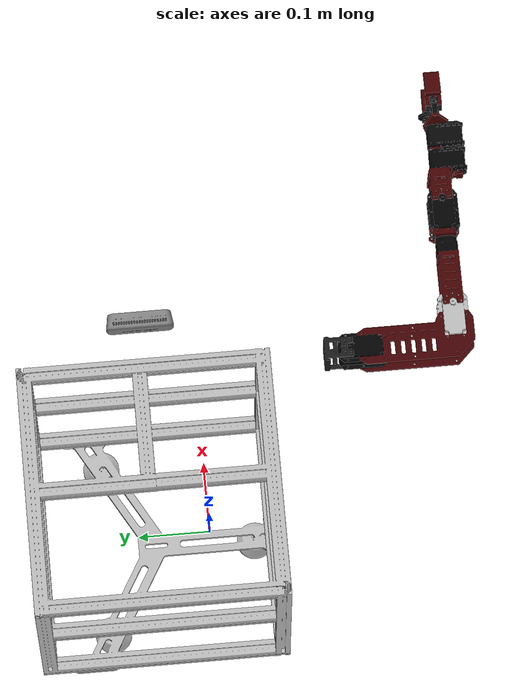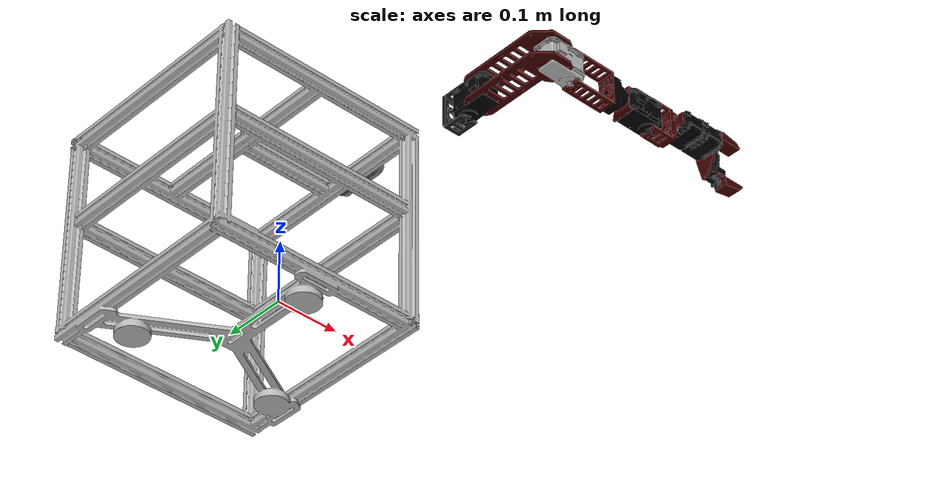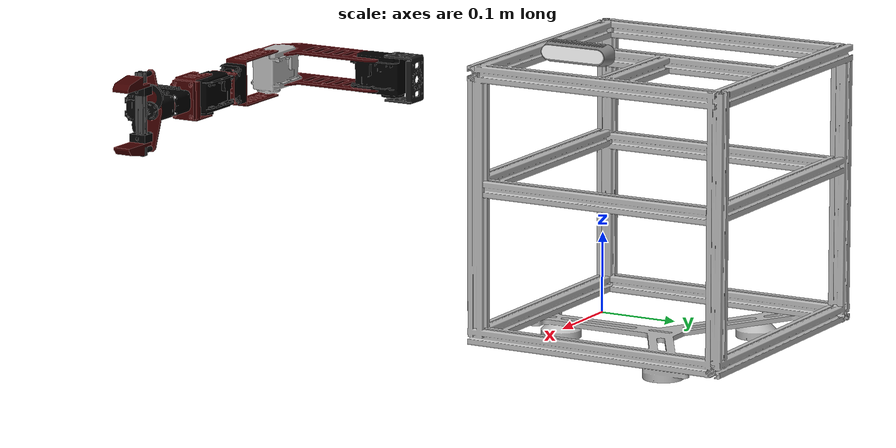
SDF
<?xml version="1.0"?>
<sdf version="1.8">
  <model name="abv">
    <static>false</static>
    <self_collide>true</self_collide>

    <!-- Mobile base -->
    <include>
      <uri>model://abv_chassis</uri>
      <name>base</name>
      <pose>0 0 0.04 0 0 0</pose>
    </include>

    <include>
      <uri>model://realsense_camera</uri>
      <name>camera</name>
      <pose>0.19 0.075 0.265 0 0 0</pose>
    </include>

    <include>
      <uri>model://widow_xl</uri>
      <name>wxr</name>
      <pose>0.155 -0.205 0.3 0 -1.57 1.57</pose>
      <plugin filename="libjoint_position_controller.so" name="JointPositionController">
        <publish>gazebo/joint_positions</publish>
        <command>gazebo/joint_commands</command>
        <initial_position>0 0 0 0</initial_position>
      </plugin>
    </include>

    <joint name="camera_mount" type="fixed">
      <parent>base::vehicle_frame</parent>
      <child>camera::camera_link</child>
    </joint>

    <!-- Fixed joint (weld) between the base link and the arm’s base link -->
    <joint name="weld_arm_to_base" type="fixed">
      <parent>base::vehicle_frame</parent>
      <child>wxr::widow_xl_base</child>
    </joint>

  </model>
</sdf>

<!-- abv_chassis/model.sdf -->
<sdf version="1.8">
  <model name="abv_chassis">

    <!-- Base link with mesh + inertia -->
    <link name="base_link">
      <pose>0 0 0 0 0 0</pose>

      <collision name="collision">
        <geometry>
          <mesh>
            <uri>model://abv_chassis/meshes/abv_v1.stl</uri>
          </mesh>
        </geometry>
        <surface>
          <friction>
            <ode>
              <mu>0</mu>
              <mu2>0</mu2>
            </ode>
          </friction>
        </surface>
      </collision>

      <visual name="visual">
        <geometry>
          <mesh>
            <uri>model://abv_chassis/meshes/abv_v2.dae</uri>
          </mesh>
        </geometry>
      </visual>

      <inertial>
        <mass>12.7</mass>
        <inertia>
          <ixx>0.3</ixx><iyy>0.3</iyy><izz>0.3</izz>
          <ixy>0</ixy><ixz>0</ixz><iyz>0</iyz>
        </inertia>
      </inertial>
    </link>

    <!-- Vehicle frame -->
    <link name="vehicle_frame">
      <pose relative_to="base_link">0.01 0.065 0.2 0 0 0</pose>

      <inertial>
        <mass>0.1</mass>
        <inertia>
          <ixx>0.1</ixx><iyy>0.1</iyy><izz>0.1</izz>
          <ixy>0</ixy><ixz>0</ixz><iyz>0</iyz>
        </inertia>
      </inertial>
    </link>

    <joint name="vehicle_frame_to_base" type="fixed">
      <parent>base_link</parent>
      <child>vehicle_frame</child>
    </joint>

  </model>
</sdf>

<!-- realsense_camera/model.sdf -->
<sdf version="1.7">
  <model name="realsense_camera">
    <pose>0 0 0 0 0 0</pose>

    <link name="camera_link">
      <pose>0 0 0 0 0 0</pose>
      <visual name="camera_visual">
        <pose>0 0 0.1 0 0 1.57</pose>
        <geometry>
          	<mesh>
             <uri>model://realsense_camera/meshes/RealSense_D435.dae</uri>
            </mesh>
          </geometry>
      </visual>

      <collision name="camera_collision">
        <pose>0 0 0 0 0 0</pose>
        <geometry>
            <mesh>
             <uri>model://realsense_camera/meshes/RealSense_D435.dae</uri>
            </mesh>
        </geometry>
      </collision>

      <!-- Left camera sensor -->
      <sensor name="left_camera" type="camera">
        <pose>0 0 0 0 0 0</pose>
        <camera>
          <horizontal_fov>1.3962634</horizontal_fov>
          <image>
            <width>640</width>
            <height>480</height>
            <format>R8G8B8</format>
          </image>
          <clip>
            <near>0.5</near>
            <far>3.5</far>
          </clip>
        </camera>
        <always_on>1</always_on>
        <update_rate>10</update_rate>
        <visualize>true</visualize>
      </sensor>

      <!-- Right camera sensor -->
      <sensor name="right_camera" type="camera">
        <pose>0 0.12 0 0 0 0</pose>
        <camera>
          <horizontal_fov>1.3962634</horizontal_fov>
          <image>
            <width>640</width>
            <height>480</height>
            <format>R8G8B8</format>
          </image>
          <clip>
            <near>0.5</near>
            <far>3.5</far>
          </clip>
        </camera>
        <always_on>1</always_on>
        <update_rate>10</update_rate>
        <visualize>true</visualize>
      </sensor>

      <!-- Inertial properties -->
      <inertial>
        <mass>0.1</mass>
        <inertia>
          <ixx>1e-5</ixx>
          <iyy>1e-5</iyy>
          <izz>1e-5</izz>
          <ixy>0</ixy>
          <ixz>0</ixz>
          <iyz>0</iyz>
        </inertia>
      </inertial>

    </link>
  </model>
</sdf>

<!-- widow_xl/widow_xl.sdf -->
<sdf version='1.9'>
  <model name='widow_xl'>
    <link name='widow_xl_base'>
      <inertial>
        <pose>0 0 0 0 0 0</pose>
        <mass>0.20000000000000001</mass>
        <inertia>
          <ixx>0.0001</ixx>
          <ixy>0</ixy>
          <ixz>0</ixz>
          <iyy>0.0001</iyy>
          <iyz>0</iyz>
          <izz>0.0001</izz>
        </inertia>
      </inertial>
      <collision name='widow_xl_base_fixed_joint_lump__shoulder_mount_collision'>
        <pose>0 0 0 0 0 0</pose>
        <geometry>
          <box>
            <size>0.07 0.07 0.05</size>
          </box>
        </geometry>
      </collision>
      <visual name='widow_xl_base_fixed_joint_lump__shoulder_mount_visual'>
        <pose>0 0 0 0 0 0</pose>
        <geometry>
          <mesh>
            <scale>1 1 1</scale>
            <uri>model://widow_xl/meshes/shoulder_mount.dae</uri>
          </mesh>
        </geometry>
      </visual>
    </link>
    <joint name='shoulder_joint' type='revolute'>
      <pose relative_to='widow_xl_base'>0 0 0 0 0 0</pose>
      <parent>widow_xl_base</parent>
      <child>shoulder_link</child>
      <axis>
        <xyz>1 0 0</xyz>
        <limit>
          <lower>-1.5700000000000001</lower>
          <upper>1.5700000000000001</upper>
          <effort>1000</effort>
          <velocity>1</velocity>
        </limit>
        <dynamics>
          <damping>5</damping>
          <friction>0.5</friction>
          <spring_reference>0</spring_reference>
          <spring_stiffness>0</spring_stiffness>
        </dynamics>
      </axis>
    </joint>
    <link name='shoulder_link'>
      <pose relative_to='shoulder_joint'>0 0 0 0 0 0</pose>
      <inertial>
        <pose>0 -0.025 0.07000000000000001 0 0 0</pose>
        <mass>0.29999999999999999</mass>
        <inertia>
          <ixx>0.00050000000000000001</ixx>
          <ixy>0</ixy>
          <ixz>0</ixz>
          <iyy>0.00050000000000000001</iyy>
          <iyz>0</iyz>
          <izz>0.0001</izz>
        </inertia>
      </inertial>
      <collision name='shoulder_link_collision'>
        <pose>0 -0.025 0.07000000000000001 0 0 0</pose>
        <geometry>
          <cylinder>
            <length>0.14499999999999999</length>
            <radius>0.029999999999999999</radius>
          </cylinder>
        </geometry>
      </collision>
      <visual name='shoulder_link_visual'>
        <pose>0 0 0 0 0 0</pose>
        <geometry>
          <mesh>
            <scale>1 1 1</scale>
            <uri>model://widow_xl/meshes/shoulder.dae</uri>
          </mesh>
        </geometry>
      </visual>
    </link>
    <joint name='forearm_joint' type='revolute'>
      <pose relative_to='shoulder_link'>0 -0.0525 0.145 0 0 0</pose>
      <parent>shoulder_link</parent>
      <child>forearm_link</child>
      <axis>
        <xyz>1 0 0</xyz>
        <limit>
          <lower>-1.5700000000000001</lower>
          <upper>1.5700000000000001</upper>
          <effort>1000</effort>
          <velocity>1</velocity>
        </limit>
        <dynamics>
          <damping>5</damping>
          <friction>0.5</friction>
          <spring_reference>0</spring_reference>
          <spring_stiffness>0</spring_stiffness>
        </dynamics>
      </axis>
    </joint>
    <link name='forearm_link'>
      <pose relative_to='forearm_joint'>0 0 0 0 0 0</pose>
      <inertial>
        <pose>0 -0.075 0 0 0 0</pose>
        <mass>0.25</mass>
        <inertia>
          <ixx>0.00050000000000000001</ixx>
          <ixy>0</ixy>
          <ixz>0</ixz>
          <iyy>0.0001</iyy>
          <iyz>0</iyz>
          <izz>0.00050000000000000001</izz>
        </inertia>
      </inertial>
      <collision name='forearm_link_collision'>
        <pose>0 -0.075 0 0 0 0</pose>
        <geometry>
          <cylinder>
            <length>0.14999999999999999</length>
            <radius>0.025000000000000001</radius>
          </cylinder>
        </geometry>
      </collision>
      <visual name='forearm_link_visual'>
        <pose>0 0 0 0 0 0</pose>
        <geometry>
          <mesh>
            <scale>1 1 1</scale>
            <uri>model://widow_xl/meshes/forearm.dae</uri>
          </mesh>
        </geometry>
      </visual>
    </link>
    <joint name='wrist_joint' type='revolute'>
      <pose relative_to='forearm_link'>0 -0.15 0 0 0 0</pose>
      <parent>forearm_link</parent>
      <child>wrist_link</child>
      <axis>
        <xyz>1 0 0</xyz>
        <limit>
          <lower>-1.5700000000000001</lower>
          <upper>1.5700000000000001</upper>
          <effort>1000</effort>
          <velocity>1</velocity>
        </limit>
        <dynamics>
          <damping>5</damping>
          <friction>0.5</friction>
          <spring_reference>0</spring_reference>
          <spring_stiffness>0</spring_stiffness>
        </dynamics>
      </axis>
    </joint>
    <link name='wrist_link'>
      <pose relative_to='wrist_joint'>0 0 0 0 0 0</pose>
      <inertial>
        <pose>0 -0.0375 0 0 0 0</pose>
        <mass>0.14999999999999999</mass>
        <inertia>
          <ixx>0.0001</ixx>
          <ixy>0</ixy>
          <ixz>0</ixz>
          <iyy>5.0000000000000002e-05</iyy>
          <iyz>0</iyz>
          <izz>0.0001</izz>
        </inertia>
      </inertial>
      <collision name='wrist_link_collision'>
        <pose>0 -0.0375 0 0 0 0</pose>
        <geometry>
          <cylinder>
            <length>0.074999999999999997</length>
            <radius>0.02</radius>
          </cylinder>
        </geometry>
      </collision>
      <visual name='wrist_link_visual'>
        <pose>0 0 0 0 0 0</pose>
        <geometry>
          <mesh>
            <scale>1 1 1</scale>
            <uri>model://widow_xl/meshes/wrist.dae</uri>
          </mesh>
        </geometry>
      </visual>
    </link>
    <joint name='wrist_rotate_joint' type='revolute'>
      <pose relative_to='wrist_link'>0 -0.075 0 0 0 -1.57</pose>
      <parent>wrist_link</parent>
      <child>wrist_rotate_link</child>
      <axis>
        <xyz>1 0 0</xyz>
        <limit>
          <lower>-1.5700000000000001</lower>
          <upper>1.5700000000000001</upper>
          <effort>1000</effort>
          <velocity>1</velocity>
        </limit>
        <dynamics>
          <damping>5</damping>
          <friction>0.5</friction>
          <spring_reference>0</spring_reference>
          <spring_stiffness>0</spring_stiffness>
        </dynamics>
      </axis>
    </joint>
    <link name='wrist_rotate_link'>
      <pose relative_to='wrist_rotate_joint'>0 0 0 0 0 0</pose>
      <inertial>
        <pose>0.02 0 0 0 0 0</pose>
        <mass>0.10000000000000001</mass>
        <inertia>
          <ixx>5.0000000000000002e-05</ixx>
          <ixy>0</ixy>
          <ixz>0</ixz>
          <iyy>5.0000000000000002e-05</iyy>
          <iyz>0</iyz>
          <izz>5.0000000000000002e-05</izz>
        </inertia>
      </inertial>
      <collision name='wrist_rotate_link_collision'>
        <pose>0.02 0 0 0 0 0</pose>
        <geometry>
          <cylinder>
            <length>0.040000000000000001</length>
            <radius>0.02</radius>
          </cylinder>
        </geometry>
      </collision>
      <visual name='wrist_rotate_link_visual'>
        <pose>0 0 0 0 0 0</pose>
        <geometry>
          <mesh>
            <scale>1 1 1</scale>
            <uri>model://widow_xl/meshes/wrist_rotate.dae</uri>
          </mesh>
        </geometry>
      </visual>
    </link>
    <joint name='left_finger_joint' type='prismatic'>
      <pose relative_to='wrist_rotate_link'>0.0575 0.035 0 0 0 0</pose>
      <parent>wrist_rotate_link</parent>
      <child>left_finger_link</child>
      <axis>
        <xyz>0 -1 0</xyz>
        <limit>
          <lower>0</lower>
          <upper>0.032500000000000001</upper>
          <effort>1000</effort>
          <velocity>1</velocity>
        </limit>
        <dynamics>
          <damping>5</damping>
          <friction>0.5</friction>
          <spring_reference>0</spring_reference>
          <spring_stiffness>0</spring_stiffness>
        </dynamics>
      </axis>
    </joint>
    <link name='left_finger_link'>
      <pose relative_to='left_finger_joint'>0 0 0 0 0 0</pose>
      <inertial>
        <pose>0 0 0 0 0 0</pose>
        <mass>0.050000000000000003</mass>
        <inertia>
          <ixx>1.0000000000000001e-05</ixx>
          <ixy>0</ixy>
          <ixz>0</ixz>
          <iyy>1.0000000000000001e-05</iyy>
          <iyz>0</iyz>
          <izz>1.0000000000000001e-05</izz>
        </inertia>
      </inertial>
      <collision name='left_finger_link_collision'>
        <pose>0 0 0 0 0 0</pose>
        <geometry>
          <box>
            <size>0.015 0.03 0.04</size>
          </box>
        </geometry>
      </collision>
      <visual name='left_finger_link_visual'>
        <pose>0 0 0 0 0 1.57</pose>
        <geometry>
          <mesh>
            <scale>1 1 1</scale>
            <uri>model://widow_xl/meshes/finger.dae</uri>
          </mesh>
        </geometry>
      </visual>
    </link>
    <joint name='right_finger_joint' type='prismatic'>
      <pose relative_to='wrist_rotate_link'>0.0575 -0.035 0 0 0 0</pose>
      <parent>wrist_rotate_link</parent>
      <child>right_finger_link</child>
      <axis>
        <xyz>0 1 0</xyz>
        <limit>
          <lower>0</lower>
          <upper>0.032500000000000001</upper>
          <effort>1000</effort>
          <velocity>1</velocity>
        </limit>
        <dynamics>
          <damping>5</damping>
          <friction>0.5</friction>
          <spring_reference>0</spring_reference>
          <spring_stiffness>0</spring_stiffness>
        </dynamics>
      </axis>
    </joint>
    <link name='right_finger_link'>
      <pose relative_to='right_finger_joint'>0 0 0 0 0 0</pose>
      <inertial>
        <pose>0 0 0 0 0 0</pose>
        <mass>0.050000000000000003</mass>
        <inertia>
          <ixx>1.0000000000000001e-05</ixx>
          <ixy>0</ixy>
          <ixz>0</ixz>
          <iyy>1.0000000000000001e-05</iyy>
          <iyz>0</iyz>
          <izz>1.0000000000000001e-05</izz>
        </inertia>
      </inertial>
      <collision name='right_finger_link_collision'>
        <pose>0 0 0 0 0 0</pose>
        <geometry>
          <box>
            <size>0.015 0.03 0.04</size>
          </box>
        </geometry>
      </collision>
      <visual name='right_finger_link_visual'>
        <pose>0 0 0 3.14159 0 -1.57</pose>
        <geometry>
          <mesh>
            <scale>1 1 1</scale>
            <uri>model://widow_xl/meshes/finger.dae</uri>
          </mesh>
        </geometry>
      </visual>
    </link>
    <frame name='mount_joint' attached_to='widow_xl_base'>
      <pose>0 0 0 0 -0 0</pose>
    </frame>
    <frame name='shoulder_mount' attached_to='mount_joint'/>
    <frame name='gripper_joint' attached_to='wrist_rotate_link'>
      <pose>0.0575 0 0 0 -0 0</pose>
    </frame>
    <frame name='gripper_link' attached_to='gripper_joint'/>
  </model>
</sdf>
